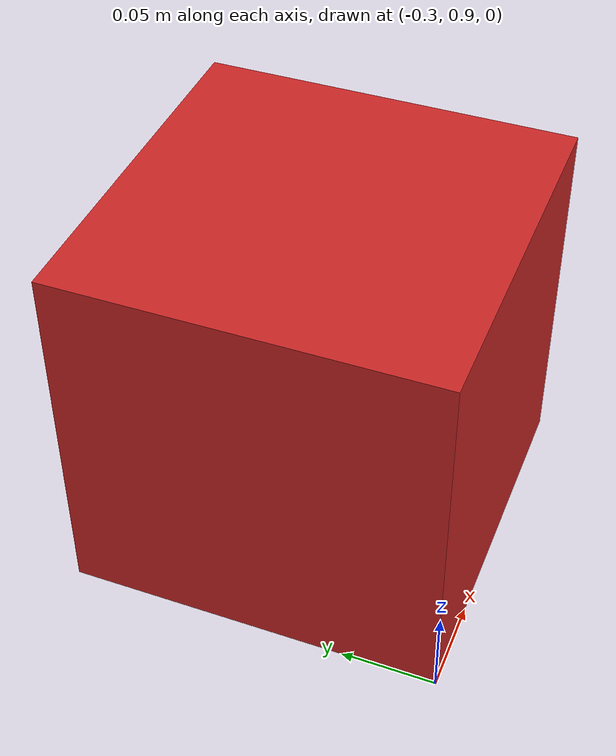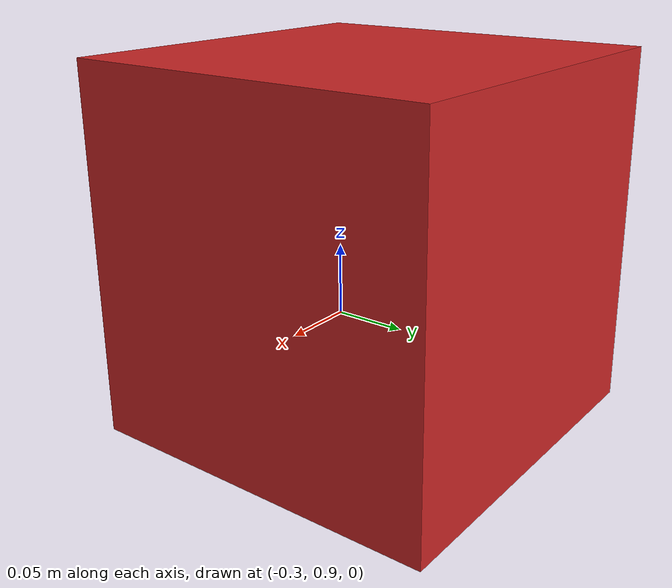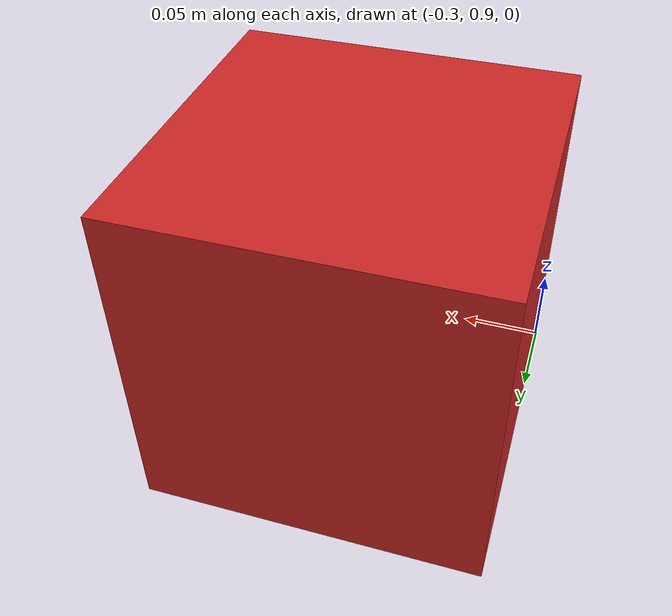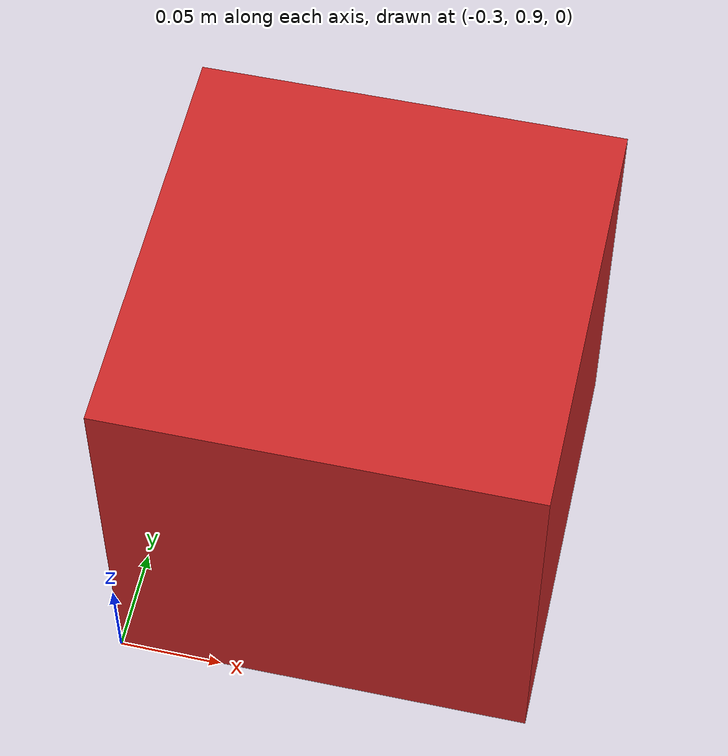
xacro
<?xml version="1.0"?>
<robot name="box2" xmlns:xacro="http:/www.ros.org/wiki/xacro">

  <xacro:include filename="$(find test_gazebo_camera)/urdf/box2.gazebo"/>
  <xacro:include filename="$(find test_gazebo_camera)/urdf/materials.xacro"/>

  <link name="world"/>
  <joint name="fix" type="fixed">
    <origin xyz = "0 0 0" rpy="0 0 0"/>
    <parent link = "world"/>
    <child link = "link1"/>
  </joint>

  <link name="link1">
    <collision>
      <origin xyz = "-0.2 1 0.1" rpy="0 0 0"/>
      <geometry>
        <box size = "0.2 0.2 0.2" rpy="0 0 0"/>
      </geometry>
    </collision>

    <visual>
      <origin xyz = "-0.2 1 0.1" rpy="0 0 0"/>
      <geometry>
        <box size = "0.2 0.2 0.2" rpy="0 0 0"/>
      </geometry>
      <material name="red"/>
    </visual>

    <inertial>
      <mass value = "0.001"/>
      <origin xyz = "-0.2 1 0.1" rpy="0 0 0"/>
      <inertia ixx="0.0001" ixy = "0" ixz = "0" iyy= "0.0001" iyz="0" izz="0.0001"/>
    </inertial>
  </link>
</robot>
